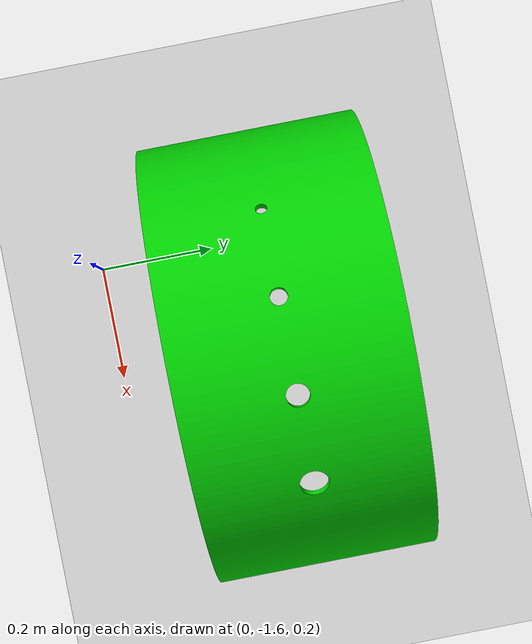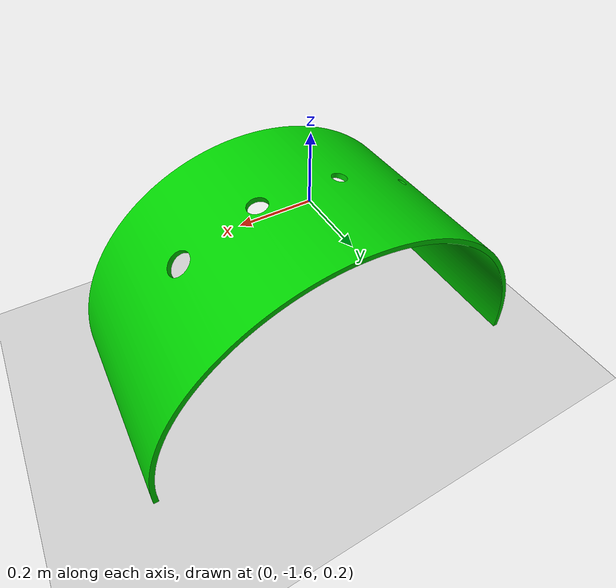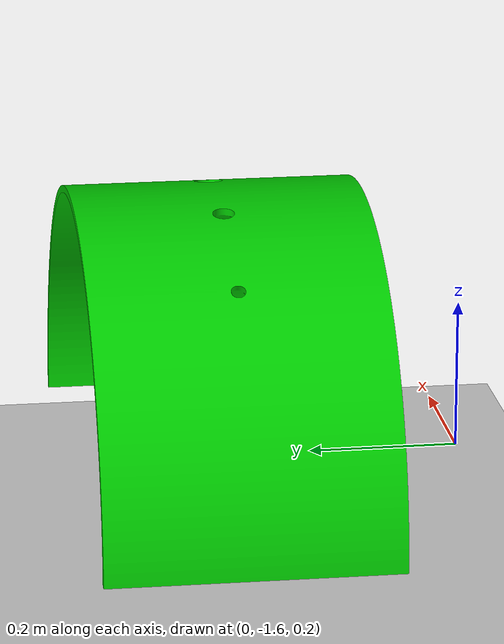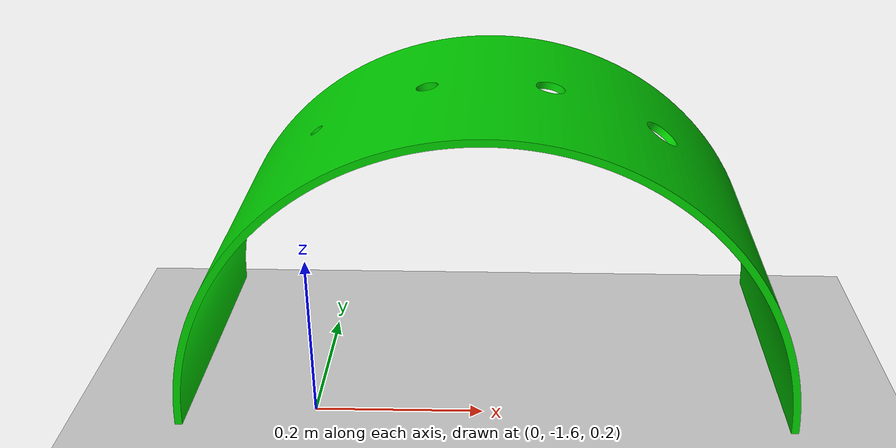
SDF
<?xml version="1.0" ?>
<sdf version="1.9">
  <world name="default">
    <gravity>0 0 -9.81</gravity>
    <physics name="default_physics" type="ode">
      <max_step_size>0.004</max_step_size>
      <real_time_factor>1.0</real_time_factor>
    </physics>
    <plugin
      filename="gz-sim-physics-system"
      name="gz::sim::systems::Physics"/>
    <plugin
      filename="gz-sim-user-commands-system"
      name="gz::sim::systems::UserCommands"/>
    <plugin
      filename="gz-sim-scene-broadcaster-system"
      name="gz::sim::systems::SceneBroadcaster"/>
    <plugin
      filename="gz-sim-sensors-system"
      name="gz::sim::systems::Sensors">
      <render_engine>ogre2</render_engine>
    </plugin>
    <light name="sun" type="directional">
      <cast_shadows>true</cast_shadows>
      <pose>0 0 10 0 0 0</pose>
      <diffuse>0.8 0.8 0.8 1</diffuse>
      <specular>0.2 0.2 0.2 1</specular>
      <attenuation>
        <range>1000</range>
        <constant>0.9</constant>
        <linear>0.01</linear>
        <quadratic>0.001</quadratic>
      </attenuation>
      <direction>-0.5 0.1 -0.9</direction>
    </light>
    <model name="ground_plane">
      <static>true</static>
      <link name="link">
        <collision name="collision">
          <geometry>
            <plane>
              <normal>0 0 1</normal>
              <size>100 100</size>
            </plane>
          </geometry>
        </collision>
        <visual name="visual">
          <geometry>
            <plane>
              <normal>0 0 1</normal>
              <size>100 100</size>
            </plane>
          </geometry>
          <material>
            <ambient>0.8 0.8 0.8 1</ambient>
            <diffuse>0.8 0.8 0.8 1</diffuse>
          </material>
        </visual>
      </link>
    </model>
    <model name="mounting_dock">
      <static>true</static>
      <pose>0.2 -1.5 0.1 0 0 1.57079632679</pose>
      <link name="link">
        <collision name="collision">
          <geometry>
            <mesh>
              <uri>package://objects/meshes/mounting_dock.stl</uri>
              <scale>0.001 0.001 0.001</scale>
            </mesh>
          </geometry>
        </collision>
        <visual name="visual">
          <geometry>
            <mesh>
              <uri>package://objects/meshes/mounting_dock.stl</uri>
              <scale>0.001 0.001 0.001</scale>
            </mesh>
          </geometry>
          <material>
            <ambient>0.0 0.6 0.0 1</ambient>
            <diffuse>0.0 0.8 0.0 1</diffuse>
            <specular>0.1 0.1 0.1 1</specular>
            <emissive>0.0 0.0 0.0 1</emissive>
          </material>
        </visual>
      </link>
    </model>
  </world>
</sdf>
